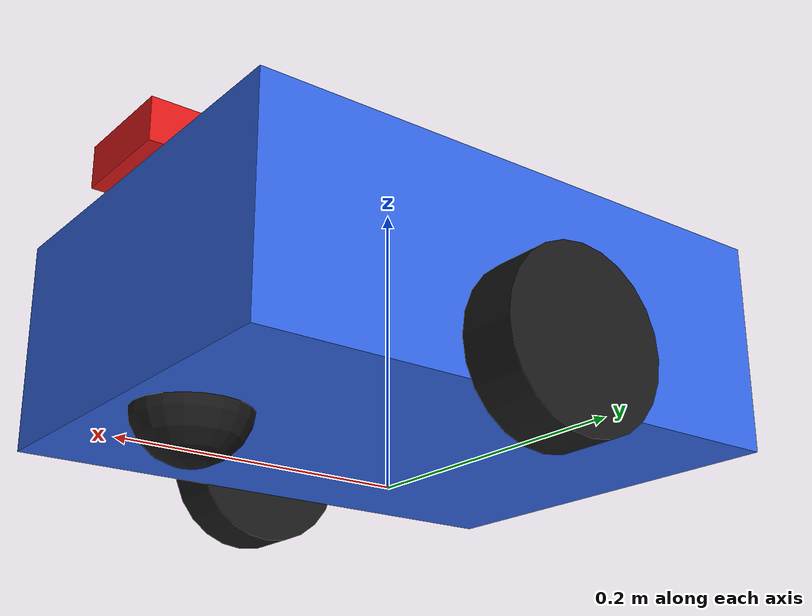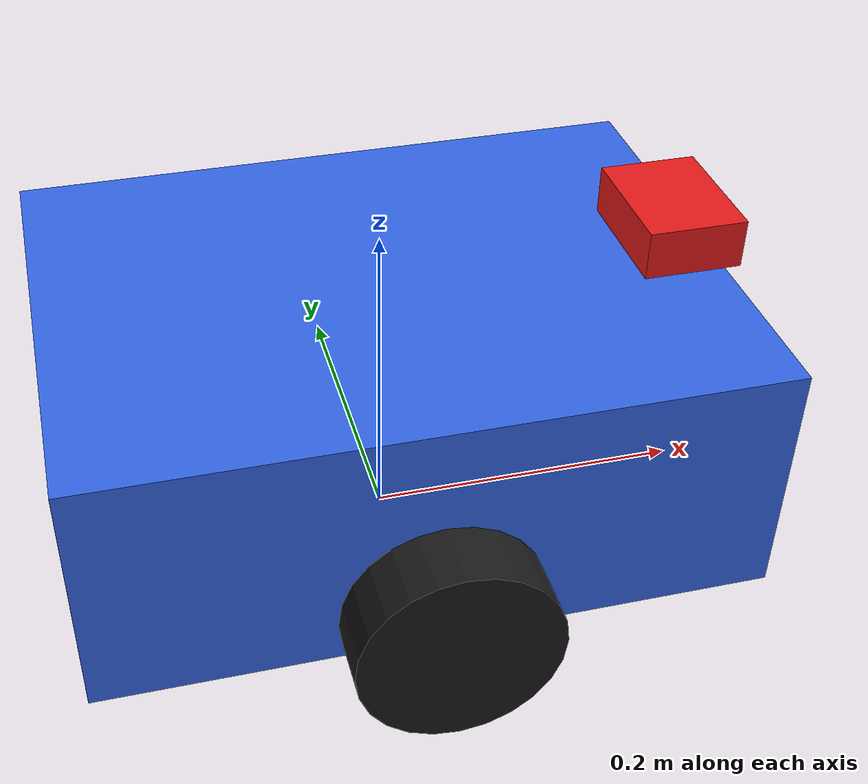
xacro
<?xml version="1.0"?>
<robot name="radar_bot" xmlns:xacro="http://www.ros.org/wiki/xacro">

  <!-- Materials -->
  <material name="blue"><color rgba="0.2 0.4 0.9 1"/></material>
  <material name="black"><color rgba="0.1 0.1 0.1 1"/></material>
  <material name="red"><color rgba="0.9 0.1 0.1 1"/></material>

  <!-- Base -->
  <link name="base_footprint"/>

  <link name="base_link">
    <visual>
      <geometry><box size="0.4 0.3 0.15"/></geometry>
      <material name="blue"/>
    </visual>
    <collision>
      <geometry><box size="0.4 0.3 0.15"/></geometry>
    </collision>
    <inertial>
      <mass value="5.0"/>
      <inertia ixx="0.05" ixy="0" ixz="0" iyy="0.08" iyz="0" izz="0.1"/>
    </inertial>
  </link>

  <joint name="base_joint" type="fixed">
    <parent link="base_footprint"/>
    <child link="base_link"/>
    <origin xyz="0 0 0.1" rpy="0 0 0"/>
  </joint>

  <!-- Wheels -->
  <xacro:macro name="wheel" params="name x y">
    <link name="${name}_wheel">
      <visual>
        <origin rpy="1.5708 0 0"/>
        <geometry><cylinder radius="0.06" length="0.04"/></geometry>
        <material name="black"/>
      </visual>
      <collision>
        <origin rpy="1.5708 0 0"/>
        <geometry><cylinder radius="0.06" length="0.04"/></geometry>
      </collision>
      <inertial>
        <mass value="0.3"/>
        <inertia ixx="0.001" ixy="0" ixz="0" iyy="0.001" iyz="0" izz="0.001"/>
      </inertial>
    </link>
    <joint name="${name}_wheel_joint" type="continuous">
      <parent link="base_link"/>
      <child link="${name}_wheel"/>
      <origin xyz="${x} ${y} -0.05" rpy="0 0 0"/>
      <axis xyz="0 1 0"/>
    </joint>
  </xacro:macro>

  <xacro:wheel name="left"  x="0"  y="0.17"/>
  <xacro:wheel name="right" x="0" y="-0.17"/>

  <!-- Caster -->
  <link name="caster">
    <visual><geometry><sphere radius="0.04"/></geometry><material name="black"/></visual>
    <collision><geometry><sphere radius="0.04"/></geometry></collision>
    <inertial><mass value="0.1"/><inertia ixx="0.0001" ixy="0" ixz="0" iyy="0.0001" iyz="0" izz="0.0001"/></inertial>
  </link>
  <joint name="caster_joint" type="fixed">
    <parent link="base_link"/>
    <child link="caster"/>
    <origin xyz="0.15 0 -0.07"/>
  </joint>

  <!-- Radar link -->
  <link name="radar_link">
    <visual>
      <geometry><box size="0.06 0.08 0.03"/></geometry>
      <material name="red"/>
    </visual>
  </link>
  <joint name="radar_joint" type="fixed">
    <parent link="base_link"/>
    <child link="radar_link"/>
    <origin xyz="0.18 0 0.09" rpy="0 0 0"/>
  </joint>

  <!-- Gazebo: differential drive + radar sensor -->
  <gazebo>
    <plugin filename="gz-sim-diff-drive-system"
            name="gz::sim::systems::DiffDrive">
      <left_joint>left_wheel_joint</left_joint>
      <right_joint>right_wheel_joint</right_joint>
      <wheel_separation>0.34</wheel_separation>
      <wheel_radius>0.06</wheel_radius>
      <odom_publish_frequency>30</odom_publish_frequency>
      <topic>cmd_vel</topic>
      <odom_topic>odom</odom_topic>
      <frame_id>odom</frame_id>
      <child_frame_id>base_footprint</child_frame_id>
      <tf_topic>/tf</tf_topic>
    </plugin>

    <plugin filename="gz-sim-joint-state-publisher-system"
            name="gz::sim::systems::JointStatePublisher">
      <topic>joint_states</topic>
    </plugin>
  </gazebo>

  <gazebo reference="radar_link">
    <sensor name="radar" type="gpu_lidar">
      <pose>0 0 0 0 0 0</pose>
      <topic>radar/scan</topic>
      <update_rate>15</update_rate>
      <lidar>
        <scan>
          <horizontal>
            <samples>180</samples>
            <resolution>1</resolution>
            <min_angle>-1.57</min_angle>
            <max_angle>1.57</max_angle>
          </horizontal>
          <vertical>
            <samples>8</samples>
            <resolution>1</resolution>
            <min_angle>-0.26</min_angle>
            <max_angle>0.26</max_angle>
          </vertical>
        </scan>
        <range>
          <min>0.2</min>
          <max>25.0</max>
          <resolution>0.05</resolution>
        </range>
        <noise>
          <type>gaussian</type>
          <mean>0.0</mean>
          <stddev>0.05</stddev>
        </noise>
      </lidar>
      <always_on>1</always_on>
      <visualize>true</visualize>
    </sensor>
  </gazebo>

</robot>
